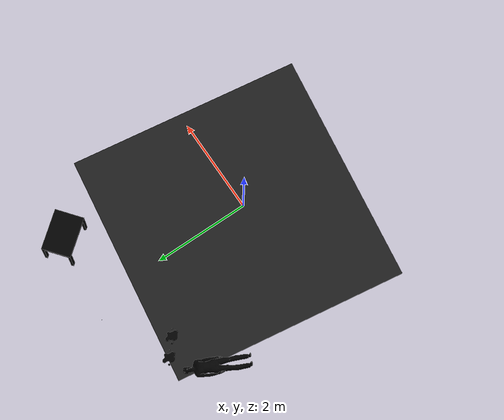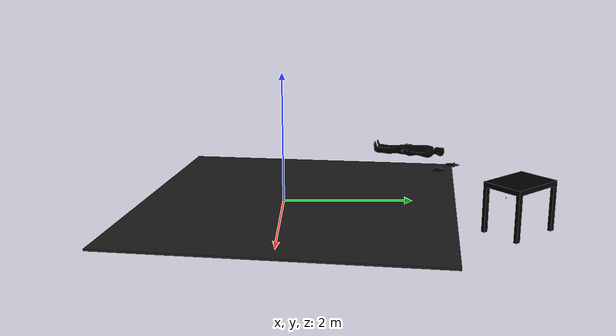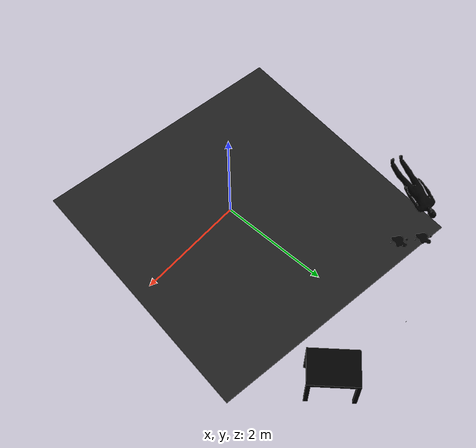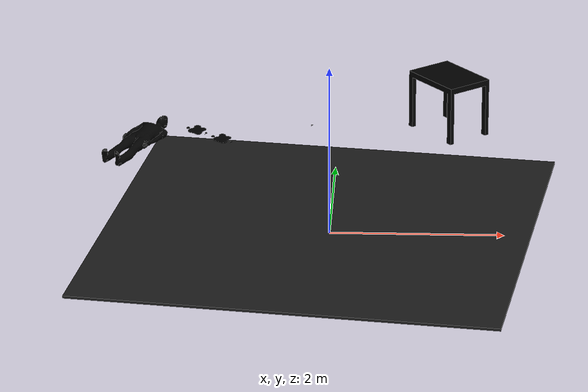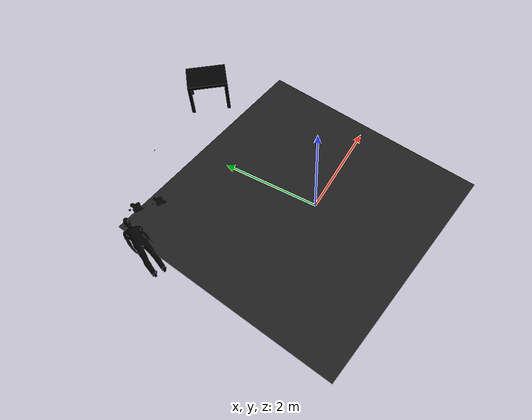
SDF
<sdf version="1.7">
 <world name="default">
  <gravity>0 0 -9.8</gravity>
  <magnetic_field>6e-06 2.3e-05 -4.2e-05</magnetic_field>
  <atmosphere type="adiabatic"/>
  <physics type="ode">
   <max_step_size>0.001</max_step_size>
   <real_time_factor>1</real_time_factor>
   <real_time_update_rate>1000</real_time_update_rate>
  </physics>
  <scene><ambient>0.4 0.4 0.4 1</ambient><background>0 0 0 1</background><shadows>1</shadows></scene>
  <spherical_coordinates>
   <surface_model>EARTH_WGS84</surface_model>
   <latitude_deg>0</latitude_deg>
   <longitude_deg>0</longitude_deg>
   <elevation>0</elevation>
   <heading_deg>0</heading_deg>
  </spherical_coordinates>
  <model name="person_standing">
   <static>1</static>
   <link name="link">
    <inertial>
     <pose>0 -0.1 0.95 0 -0 0</pose>
     <mass>80</mass>
     <inertia><ixx>24.88</ixx><ixy>0</ixy><ixz>0</ixz><iyy>25.73</iyy><iyz>0</iyz><izz>2.48</izz></inertia>
    </inertial>
    <collision name="bottom">
     <pose>0 -0.1 0.01 0 -0 0</pose>
     <geometry><box><size>0.5 0.35 0.02</size></box></geometry>
    </collision>
    <collision name="person">
     <pose>0 0 0.02 0.04 -0 0</pose>
     <geometry>
      <mesh><uri>model://person_standing/meshes/standing.dae</uri><scale>0.7 0.7 0.7</scale></mesh>
     </geometry>
    </collision>
    <visual name="visual">
     <pose>0 0 0.02 0.04 -0 0</pose>
     <geometry>
      <mesh><uri>model://person_standing/meshes/standing.dae</uri><scale>0.7 0.7 0.7</scale></mesh>
     </geometry>
     <material>
      <ambient>0 0 0 1</ambient>
      <diffuse>0 0 0 1</diffuse>
      <specular>0 0 0 1</specular>
      <emissive>1 0.3 0.3 1</emissive>
     </material>
    </visual>
   </link>
   <pose>-2.68438 1.60888 0.168293 -1.56603 0.081304 -0.432906</pose>
  </model>
  <model name="coffee_spill">
   <link name="link_0">
    <inertial>
     <mass>1</mass>
     <inertia>
      <ixx>0.166667</ixx>
      <ixy>0</ixy>
      <ixz>0</ixz>
      <iyy>0.166667</iyy>
      <iyz>0</iyz>
      <izz>0.166667</izz>
     </inertia>
    </inertial>
    <visual name="visual">
     <geometry><mesh><uri>model://coffee_spill/meshes/spill.dae</uri><scale>1 1 1</scale></mesh></geometry>
     <material>
      <lighting>1</lighting>
      <ambient>0 0 0 1</ambient>
      <diffuse>0 0 0 1</diffuse>
      <specular>0 0 0 1</specular>
      <emissive>1 0.6 0.3 1</emissive>
      <shader type="vertex"><normal_map>__default__</normal_map></shader>
     </material>
    </visual>
    <collision name="collision">
     <geometry><mesh><uri>model://coffee_spill/meshes/spill.dae</uri><scale>1 1 1</scale></mesh></geometry>
    </collision>
   </link>
   <static>1</static>
   <pose>-1.7385 2.88382 0.1 0 -0 0</pose>
  </model>
  <model name="coffee_spill_clone">
   <link name="link_0">
    <inertial>
     <mass>1</mass>
     <inertia>
      <ixx>0.166667</ixx>
      <ixy>0</ixy>
      <ixz>0</ixz>
      <iyy>0.166667</iyy>
      <iyz>0</iyz>
      <izz>0.166667</izz>
     </inertia>
    </inertial>
    <visual name="visual">
     <geometry><mesh><uri>model://coffee_spill/meshes/spill.dae</uri><scale>1 1 1</scale></mesh></geometry>
     <material>
      <lighting>1</lighting>
      <ambient>0 0 0 1</ambient>
      <diffuse>0 0 0 1</diffuse>
      <specular>0 0 0 1</specular>
      <emissive>1 0.6 0.3 1</emissive>
      <shader type="vertex"><normal_map>__default__</normal_map></shader>
     </material>
    </visual>
    <collision name="collision">
     <geometry><mesh><uri>model://coffee_spill/meshes/spill.dae</uri><scale>1 1 1</scale></mesh></geometry>
    </collision>
   </link>
   <static>1</static>
   <pose>-1.41452 2.60939 0.1 0 -0 0</pose>
  </model>
  <model name="nist_elevated_floor_120">
   <static>1</static>
   <link name="nist_elevated_floor_120">
    <collision name="collision">
     <geometry>
      <mesh>
       <uri>model://nist_elevated_floor_120/meshes/nist_elevated_floor_120.dae</uri>
       <scale>0.7 0.5 0.6</scale>
      </mesh>
     </geometry>
    </collision>
    <visual name="visual">
     <geometry>
      <mesh>
       <uri>model://nist_elevated_floor_120/meshes/nist_elevated_floor_120.dae</uri>
       <scale>0.7 0.5 0.6</scale>
      </mesh>
     </geometry>
     <material>
      <lighting>1</lighting>
      <ambient>0 0 0 1</ambient>
      <diffuse>0 0 0 1</diffuse>
      <specular>0 0 0 1</specular>
      <emissive>0.08 0.93 0.98 1</emissive>
      <shader type="vertex"><normal_map>__default__</normal_map></shader>
     </material>
    </visual>
   </link>
   <pose>1.34116 3.30757 0 0 0 -0.895087</pose>
  </model>
  <model name="dog">
   <static>1</static>
   <link name="link">
    <inertial>
     <pose>0 -0.1 0.95 0 -0 0</pose>
     <mass>80</mass>
     <inertia><ixx>24.88</ixx><ixy>0</ixy><ixz>0</ixz><iyy>25.73</iyy><iyz>0</iyz><izz>2.48</izz></inertia>
    </inertial>
    <collision name="dogi">
     <pose>0 0 0.02 0.04 -0 0</pose>
     <geometry><mesh><uri>model://dog/meshes/dog.dae</uri><scale>0.02 0.02 0.02</scale></mesh></geometry>
    </collision>
    <visual name="visual">
     <pose>0 0 0.02 0.04 -0 0</pose>
     <geometry><mesh><uri>model://dog/meshes/dog.dae</uri><scale>0.02 0.02 0.02</scale></mesh></geometry>
     <material>
      <lighting>1</lighting>
      <ambient>0 0 0 1</ambient>
      <diffuse>0 0 0 1</diffuse>
      <specular>0 0 0 1</specular>
      <emissive>0.06 1 0.2 1</emissive>
      <shader type="vertex"><normal_map>__default__</normal_map></shader>
     </material>
    </visual>
   </link>
   <pose>-0.142714 3.49199 0.003838 -0.009734 0.009252 0.081817</pose>
  </model>
  <model name="unit_box">
   <link name="link">
    <inertial>
     <mass>1</mass>
     <inertia>
      <ixx>0.166667</ixx>
      <ixy>0</ixy>
      <ixz>0</ixz>
      <iyy>0.166667</iyy>
      <iyz>0</iyz>
      <izz>0.166667</izz>
     </inertia>
    </inertial>
    <visual name="visual">
     <geometry><box><size>4.86696 4.86696 0.029951</size></box></geometry>
     <material>
      <script><name>Gazebo/Black</name><uri>file://media/materials/scripts/gazebo.material</uri></script>
      <shader type="pixel"><normal_map>__default__</normal_map></shader>
      <emissive>0 0 0 1</emissive>
      <ambient>0 0 0 1</ambient>
      <diffuse>0 0 0 1</diffuse>
      <specular>0 0 0 1</specular>
     </material>
    </visual>
    <collision name="collision">
     <geometry><box><size>4.86696 4.86696 0.029951</size></box></geometry>
     <surface>
      <friction>
       <ode><mu>1</mu><mu2>1</mu2><fdir1>0 0 0</fdir1><slip1>0</slip1><slip2>0</slip2></ode>
       <torsional>
        <coefficient>1</coefficient>
        <patch_radius>0</patch_radius>
        <surface_radius>0</surface_radius>
        <use_patch_radius>1</use_patch_radius>
        <ode><slip>0</slip></ode>
       </torsional>
      </friction>
      <bounce><restitution_coefficient>0</restitution_coefficient><threshold>1e+06</threshold></bounce>
      <contact>
       <collide_without_contact>0</collide_without_contact>
       <collide_without_contact_bitmask>1</collide_without_contact_bitmask>
       <collide_bitmask>1</collide_bitmask>
       <ode>
        <soft_cfm>0</soft_cfm>
        <soft_erp>0.2</soft_erp>
        <kp>1e+13</kp>
        <kd>1</kd>
        <max_vel>0.01</max_vel>
        <min_depth>0</min_depth>
       </ode>
       <bullet>
        <split_impulse>1</split_impulse>
        <split_impulse_penetration_threshold>-0.01</split_impulse_penetration_threshold>
        <soft_cfm>0</soft_cfm>
        <soft_erp>0.2</soft_erp>
        <kp>1e+13</kp>
        <kd>1</kd>
       </bullet>
      </contact>
     </surface>
    </collision>
   </link>
   <static>1</static>
   <pose>-0.121998 0.242056 -0.031138 0.004609 -1e-06 -0.140785</pose>
  </model>
 </world>
</sdf>
